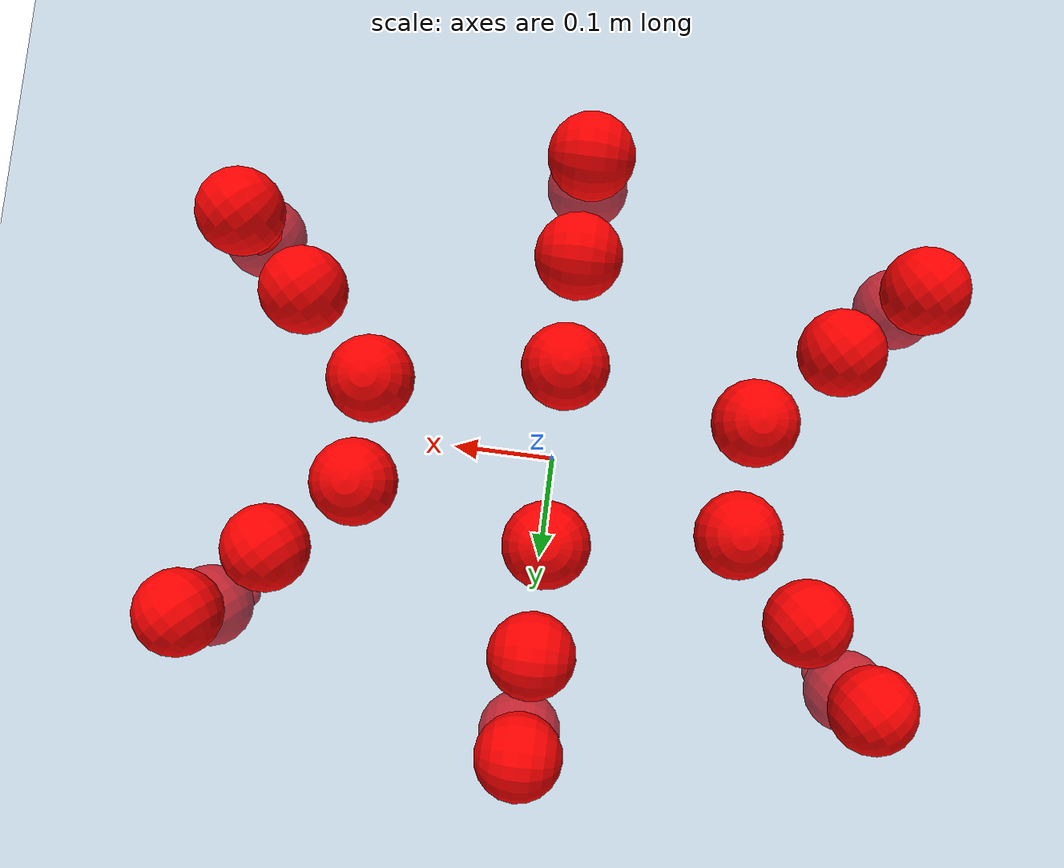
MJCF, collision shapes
<mujoco model="Golem">
  <compiler angle="radian" assetdir="assets" balanceinertia="true" inertiafromgeom="false"/>

  <option timestep="0.005" density="1.2" viscosity="2e-05"/>

  <size nkey="1"/>

  <visual>
    <quality shadowsize="8192"/>
    <map shadowclip="0.5"/>
  </visual>

  <default>
    <default class="/">
      <joint armature="0.01" damping="0.01" frictionloss="0.01"/>
      <geom contype="0" conaffinity="0" group="1" solref="-1000 -80"/>
      <site size="0.01 0.005 0.005" group="5"/>
      <general forcelimited="true" biastype="affine" gainprm="25" biasprm="0 -25 -0.5"/>
      <default class="visual">
        <geom type="mesh" group="2"/>
      </default>
      <default class="collision">
        <geom group="3"/>
      </default>
      <default class="foot">
        <geom size="0.01 0 0" condim="6" group="4" priority="1" solimp="0.015 1 0.01"/>
      </default>
      <default class="reward_collision_sphere">
        <geom group="5" rgba="1 0 0 1"/>
      </default>
    </default>
  </default>

  <asset>
    <texture type="skybox" colorspace="auto" name="//unnamed_texture_0" builtin="gradient" rgb1="0.95 0.95 0.95" rgb2="0.95 0.95 0.95" width="100" height="600"/>
    <texture type="2d" colorspace="auto" name="texplane" builtin="checker" rgb1="0.345 0.575 0.748" rgb2="0.345 0.575 0.748" markrgb="1 1 1" width="512" height="512"/>
    <material name="MatPlane" class="/" texture="texplane" texuniform="true" texrepeat="2 2" specular="0.9"/>
    <mesh name="body" class="/" file="body.stl" scale="0.001 0.001 0.001"/>
    <mesh name="coxa" class="/" file="coxa.stl" scale="0.001 0.001 0.001"/>
    <mesh name="femur" class="/" file="femur.stl" scale="0.001 0.001 0.001"/>
    <mesh name="tibia" class="/" file="tibia.stl" scale="0.001 0.001 0.001"/>
    <mesh name="tarsus" class="/" file="tarsus.stl" scale="0.001 0.001 0.001"/>
  </asset>

  <worldbody>
    <geom name="floor" class="/" size="100 100 0.125" type="plane" group="0" material="MatPlane"/>
    <light name="toplight_shadow" class="/" pos="0 0 5" dir="0.0990148 0.0990148 -0.990148" type="directional" ambient="0.04 0.04 0.04" diffuse="0.55 0.55 0.55" specular="0.12 0.12 0.12"/>
    <light name="toplight_fill" class="/" pos="0 0 5" dir="0.0990148 0.0990148 -0.990148" type="directional" castshadow="false" ambient="0.04 0.04 0.04" diffuse="0.3 0.3 0.3" specular="0.08 0.08 0.08"/>
    <body name="trunk" pos="-0.0024691 -0.00216003 -0.000974951" quat="1 0.000291661 -0.000462214 0.000151632">
      <inertial pos="0.00285115 -0.00127351 -0.00348909" quat="0.999937 0.00949673 -0.000439395 0.00601593" mass="4.67618" diaginertia="0.0236805 0.00696923 0.0167888"/>
      <joint name="//unnamed_joint_0" type="free"/>
      <geom name="//unnamed_geom_1" class="/" pos="0 0 0.0702493" quat="1 0 0 0" type="mesh" rgba="0.9 0.9 0.9 1" mesh="body"/>
      <site name="imu" class="/" pos="0.168038 0.012301 0.107375" size="0.0107028"/>
      <camera name="track" class="/" pos="0 -1.85796 0" quat="0.707107 0.707107 0 0" mode="trackcom"/>
      <camera name="ego_camera" class="/" pos="0.153948 0 0.109765" quat="-0.5 -0.5 0.5 0.5"/>
      <body name="coxa_RR" pos="-0.211756 -0.08 0.0705986" quat="0.382557 -6.75338e-05 7.49623e-05 -0.923932">
        <inertial pos="-0.000144772 -0.000970045 0.000639817" quat="0.999997 -0.00170071 0.000487221 -0.00152797" mass="0.243439" diaginertia="0.0224702 0.00683856 0.0154593"/>
        <joint name="coxa_joint_RR" class="/" pos="0 0 0" axis="-0.000190203 0.000623409 -1" range="-3.1451 3.11879" armature="0.0111796" damping="0.00376955" frictionloss="0.0110796"/>
        <geom name="//unnamed_geom_2" class="/" type="mesh" rgba="0.2 0.2 0.2 1" mesh="coxa"/>
        <geom name="//unnamed_geom_3" class="reward_collision_sphere" size="0.0428113" pos="-0.0355266 0 0"/>
        <body name="femur_RR" pos="0.0729779 0.00231748 -0.00242796" quat="0.500102 -0.499734 0.500457 0.499706">
          <inertial pos="-0.00241343 -0.000172136 -0.00188116" quat="0.999939 0.002231 -0.00090034 -0.0108054" mass="0.236571" diaginertia="0.0223365 0.00667025 0.0155463"/>
          <joint name="femur_joint_RR" class="/" pos="0 0 0" axis="0.00295902 -0.00476604 -0.999984" stiffness="0.00732288" range="-3.13391 3.1432" armature="0.0110761" damping="0.0122591" frictionloss="0.0105465"/>
          <geom name="//unnamed_geom_4" class="/" type="mesh" rgba="0.9 0.9 0.9 1" mesh="femur"/>
          <geom name="//unnamed_geom_5" class="reward_collision_sphere" size="0.0428113"/>
          <body name="tibia_RR" pos="0.00146697 -0.101688 -0.00193776" quat="0.000109972 1 0.00027724 0.000132561">
            <inertial pos="0.000633415 -0.000342096 -0.00283462" quat="0.999943 0.00934647 -0.00190496 0.00470207" mass="0.253377" diaginertia="0.024046 0.0073015 0.0162522"/>
            <joint name="tibia_joint_RR" class="/" pos="0 0 0" axis="0.0149647 -0.00353414 0.999882" range="-3.18389 3.14229" armature="0.00997753" damping="0.00189839" frictionloss="0.00921312"/>
            <geom name="//unnamed_geom_6" class="/" type="mesh" rgba="0.2 0.2 0.2 1" mesh="tibia"/>
            <geom name="//unnamed_geom_7" class="reward_collision_sphere" size="0.0428113"/>
            <body name="tarsus_RR" pos="0.101957 0.00175992 0.000210933" quat="1 -0.000141953 7.12075e-05 -0.000267587">
              <inertial pos="0.0711945 0.000413744 0.000508635" quat="0.505033 0.493069 0.505787 0.495987" mass="0.24299" diaginertia="0.0229196 0.00673309 0.0159817"/>
              <joint name="tarsus_joint_RR" class="/" pos="0 0 0" axis="0.00850831 -0.00203853 0.999962" range="-3.13129 3.09072" armature="0.010222" damping="0.0438743" frictionloss="0.0105547"/>
              <geom name="//unnamed_geom_8" class="/" type="mesh" rgba="0.9 0.9 0.9 1" mesh="tarsus"/>
              <geom name="foot_1" class="foot" size="0.0109479" pos="0.132632 0 0" quat="0 -0.707107 0 0.707107"/>
              <geom name="//unnamed_geom_10" class="reward_collision_sphere" size="0.0428113"/>
              <geom name="//unnamed_geom_11" class="reward_collision_sphere" size="0.0160542" pos="0.127303 0 0"/>
              <site name="foot_1" class="foot" pos="0.132632 0 0" quat="0 -0.707107 0 0.707107" size="0.0107028"/>
            </body>
          </body>
        </body>
      </body>
      <body name="coxa_RM" pos="0.00103769 -0.120593 0.0730794" quat="0.707923 0.000327105 -0.000266801 -0.70629">
        <inertial pos="-0.00273069 0.000634596 -0.00260178" quat="0.999906 -0.00962519 -0.00804458 0.00558411" mass="0.245597" diaginertia="0.0220979 0.00689361 0.0157182"/>
        <joint name="coxa_joint_RM" class="/" pos="0 0 0" axis="-0.00107566 0.00219527 -0.999997" range="-3.12122 3.15787" armature="0.0101582" damping="0.00958796" frictionloss="0.0100955"/>
        <geom name="//unnamed_geom_12" class="/" type="mesh" rgba="0.2 0.2 0.2 1" mesh="coxa"/>
        <geom name="//unnamed_geom_13" class="reward_collision_sphere" size="0.0428113" pos="-0.0355266 0 0"/>
        <body name="femur_RM" pos="0.0719612 0.000913105 -0.00185346" quat="0.4992 -0.499425 0.500942 0.500431">
          <inertial pos="0.00260337 8.36484e-05 1.56329e-05" quat="0.99993 -0.0021183 0.00255847 -0.0113233" mass="0.247826" diaginertia="0.0232146 0.00669303 0.0161875"/>
          <joint name="femur_joint_RM" class="/" pos="0 0 0" axis="0.0135827 -0.00255099 -0.999904" range="-3.13246 3.13846" armature="0.0109759" damping="0.0101037" frictionloss="0.0111626"/>
          <geom name="//unnamed_geom_14" class="/" type="mesh" rgba="0.9 0.9 0.9 1" mesh="femur"/>
          <geom name="//unnamed_geom_15" class="reward_collision_sphere" size="0.0428113"/>
          <body name="tibia_RM" pos="0.00126374 -0.0990688 -1.19831e-05" quat="-6.64722e-05 1 -0.000211991 1.58722e-06">
            <inertial pos="-0.0022334 0.0007077 -0.00217451" quat="0.999986 -0.00375813 0.00376218 -0.000112226" mass="0.249923" diaginertia="0.0239459 0.00664208 0.0153501"/>
            <joint name="tibia_joint_RM" class="/" pos="0 0 0" axis="-0.00977221 0.00421821 0.999943" range="-3.13842 3.12284" armature="0.0108747" damping="0.0110664" frictionloss="0.0103484"/>
            <geom name="//unnamed_geom_16" class="/" type="mesh" rgba="0.2 0.2 0.2 1" mesh="tibia"/>
            <geom name="//unnamed_geom_17" class="reward_collision_sphere" size="0.0428113"/>
            <body name="tarsus_RM" pos="0.107069 0.000374817 -0.000658916" quat="1 -0.000170126 -6.24648e-05 -4.17494e-05">
              <inertial pos="0.0721468 0.000592881 0.000695965" quat="0.49871 0.503606 0.498456 0.499211" mass="0.243275" diaginertia="0.0225186 0.00689917 0.0165053"/>
              <joint name="tarsus_joint_RM" class="/" pos="0 0 0" axis="-0.0112416 -0.00891781 0.999897" range="-3.14948 3.14245" armature="0.0106112" damping="0.00407347" frictionloss="0.0104345"/>
              <geom name="//unnamed_geom_18" class="/" type="mesh" rgba="0.9 0.9 0.9 1" mesh="tarsus"/>
              <geom name="foot_2" class="foot" size="0.00974925" pos="0.132632 0 0" quat="0 -0.707107 0 0.707107"/>
              <geom name="//unnamed_geom_20" class="reward_collision_sphere" size="0.0428113"/>
              <geom name="//unnamed_geom_21" class="reward_collision_sphere" size="0.0160542" pos="0.127303 0 0"/>
              <site name="foot_2" class="foot" pos="0.132632 0 0" quat="0 -0.707107 0 0.707107" size="0.0107028"/>
            </body>
          </body>
        </body>
      </body>
      <body name="coxa_RF" pos="0.210535 -0.0748254 0.0687057" quat="0.923858 -9.65827e-05 -9.42128e-05 -0.382734">
        <inertial pos="-0.0020282 -0.00111302 -0.000361605" quat="0.999901 0.0128146 -0.00487246 0.00314989" mass="0.252652" diaginertia="0.0241753 0.00676095 0.0161499"/>
        <joint name="coxa_joint_RF" class="/" pos="0 0 0" axis="0.00264664 0.00375352 -0.999989" range="-3.16056 3.14218" armature="0.0120455" damping="0.0122375" frictionloss="0.0105863"/>
        <geom name="//unnamed_geom_22" class="/" type="mesh" rgba="0.2 0.2 0.2 1" mesh="coxa"/>
        <geom name="//unnamed_geom_23" class="reward_collision_sphere" size="0.0428113" pos="-0.0355266 0 0"/>
        <body name="femur_RF" pos="0.071498 -0.000277916 0.00212948" quat="0.500031 -0.500048 0.499992 0.499929">
          <inertial pos="0.00200882 0.00231021 0.00188567" quat="0.999995 -0.00189135 0.000297494 0.00260312" mass="0.236741" diaginertia="0.0239236 0.00665652 0.0160796"/>
          <joint name="femur_joint_RF" class="/" pos="0 0 0" axis="-0.0123724 0.000305842 -0.999923" range="-3.16184 3.08714" armature="0.0106973" damping="0.0050044" frictionloss="0.0109678"/>
          <geom name="//unnamed_geom_24" class="/" type="mesh" rgba="0.9 0.9 0.9 1" mesh="femur"/>
          <geom name="//unnamed_geom_25" class="reward_collision_sphere" size="0.0428113"/>
          <body name="tibia_RF" pos="-0.0010082 -0.097912 0.00220897" quat="0.000240513 1 -0.000210351 5.32728e-05">
            <inertial pos="-0.00210056 -0.00249252 0.00245419" quat="0.999947 -0.00636599 0.00685664 -0.00419128" mass="0.253176" diaginertia="0.0231655 0.00686311 0.016014"/>
            <joint name="tibia_joint_RF" class="/" pos="0 0 0" axis="0.00481239 0.00449069 0.999978" range="-3.14276 3.08207" armature="0.0113219" damping="0.0113567" frictionloss="0.0105978"/>
            <geom name="//unnamed_geom_26" class="/" type="mesh" rgba="0.2 0.2 0.2 1" mesh="tibia"/>
            <geom name="//unnamed_geom_27" class="reward_collision_sphere" size="0.0428113"/>
            <body name="tarsus_RF" pos="0.105366 0.0025731 -0.00232482" quat="0.999999 0.000178803 0.000649422 -0.0011441">
              <inertial pos="0.0729615 8.16559e-05 -4.34478e-05" quat="0.502092 0.499358 0.501347 0.497188" mass="0.247317" diaginertia="0.0237173 0.00713133 0.015422"/>
              <joint name="tarsus_joint_RF" class="/" pos="0 0 0" axis="5.1667e-05 -0.000428604 1" range="-3.17668 3.13376" armature="0.0122515" damping="0.00771304" frictionloss="0.0117825"/>
              <geom name="//unnamed_geom_28" class="/" type="mesh" rgba="0.9 0.9 0.9 1" mesh="tarsus"/>
              <geom name="foot_3" class="foot" size="0.0117284" pos="0.132632 0 0" quat="0 -0.707107 0 0.707107"/>
              <geom name="//unnamed_geom_30" class="reward_collision_sphere" size="0.0428113"/>
              <geom name="//unnamed_geom_31" class="reward_collision_sphere" size="0.0160542" pos="0.127303 0 0"/>
              <site name="foot_3" class="foot" pos="0.132632 0 0" quat="0 -0.707107 0 0.707107" size="0.0107028"/>
            </body>
          </body>
        </body>
      </body>
      <body name="coxa_LR" pos="-0.209146 0.0789514 0.0676519" quat="0.381817 -0.000147629 -0.000883006 0.924237">
        <inertial pos="0.00113677 -0.000811797 -0.0019764" quat="0.999903 0.0046293 0.0072353 0.010974" mass="0.231716" diaginertia="0.022872 0.00680482 0.0154302"/>
        <joint name="coxa_joint_LR" class="/" pos="0 0 0" axis="-0.00306046 0.00165491 -0.999994" stiffness="0.0101954" range="-3.13625 3.18219" armature="0.0121825" damping="0.00645754" frictionloss="0.0095364"/>
        <geom name="//unnamed_geom_32" class="/" type="mesh" rgba="0.2 0.2 0.2 1" mesh="coxa"/>
        <geom name="//unnamed_geom_33" class="reward_collision_sphere" size="0.0428113" pos="-0.0355266 0 0"/>
        <body name="femur_LR" pos="0.0714195 0.00108485 -0.00151363" quat="0.500274 -0.499715 0.499756 0.500255">
          <inertial pos="-0.000407104 0.000721978 0.000357102" quat="0.999948 -0.0101655 -0.000875076 -0.00043287" mass="0.23893" diaginertia="0.0224456 0.00691785 0.0154122"/>
          <joint name="femur_joint_LR" class="/" pos="0 0 0" axis="0.000340333 -0.00013416 1" range="-3.1473 3.0835" armature="0.0119677" damping="0" frictionloss="0.0107574"/>
          <geom name="//unnamed_geom_34" class="/" type="mesh" rgba="0.9 0.9 0.9 1" mesh="femur"/>
          <geom name="//unnamed_geom_35" class="reward_collision_sphere" size="0.0428113"/>
          <body name="tibia_LR" pos="-0.00207642 -0.101831 -0.00181886" quat="-0.000990252 0.999999 -0.000969475 0.000380017">
            <inertial pos="0.00242627 0.00252287 0.000487159" quat="0.999901 0.00866447 0.00805458 0.00757668" mass="0.238449" diaginertia="0.0240481 0.00720883 0.0156126"/>
            <joint name="tibia_joint_LR" class="/" pos="0 0 0" axis="0.00202153 9.6025e-05 -0.999998" stiffness="0.00603626" range="-3.14923 3.14044" armature="0.0107896" damping="0.0111027" frictionloss="0.0117763"/>
            <geom name="//unnamed_geom_36" class="/" type="mesh" rgba="0.2 0.2 0.2 1" mesh="tibia"/>
            <geom name="//unnamed_geom_37" class="reward_collision_sphere" size="0.0428113"/>
            <body name="tarsus_LR" pos="0.107194 0.00099727 -0.00134561" quat="1 -0.000147755 0.000457658 0.00032456">
              <inertial pos="0.0699556 -0.00203473 -0.000389335" quat="0.503999 0.502725 0.496062 0.497167" mass="0.242615" diaginertia="0.0230828 0.00680013 0.0155932"/>
              <joint name="tarsus_joint_LR" class="/" pos="0 0 0" axis="0.000197003 7.45776e-05 -1" range="-3.11955 3.15855" armature="0.00941242" damping="0.027005" frictionloss="0.0104988"/>
              <geom name="//unnamed_geom_38" class="/" type="mesh" rgba="0.9 0.9 0.9 1" mesh="tarsus"/>
              <geom name="foot_4" class="foot" size="0.0104792" pos="0.132632 0 0" quat="0.707107 0 -0.707107 0"/>
              <geom name="//unnamed_geom_40" class="reward_collision_sphere" size="0.0428113"/>
              <geom name="//unnamed_geom_41" class="reward_collision_sphere" size="0.0160542" pos="0.127303 0 0"/>
              <site name="foot_4" class="foot" pos="0.132632 0 0" quat="0.707107 0 -0.707107 0" size="0.0107028"/>
            </body>
          </body>
        </body>
      </body>
      <body name="coxa_LM" pos="-0.00295637 0.122345 0.0717398" quat="0.706755 0.000114636 0.000625609 0.707458">
        <inertial pos="0.00302503 -0.00268069 -0.00146275" quat="0.999901 -0.00345346 0.0090996 -0.0101909" mass="0.248495" diaginertia="0.0229726 0.00697896 0.0161938"/>
        <joint name="coxa_joint_LM" class="/" pos="0 0 0" axis="0.000257551 0.00394598 -0.999992" stiffness="0.0079632" range="-3.15021 3.14708" armature="0.011634" damping="0" frictionloss="0.0107641"/>
        <geom name="//unnamed_geom_42" class="/" type="mesh" rgba="0.2 0.2 0.2 1" mesh="coxa"/>
        <geom name="//unnamed_geom_43" class="reward_collision_sphere" size="0.0428113" pos="-0.0355266 0 0"/>
        <body name="femur_LM" pos="0.0707721 -0.000203071 -0.0025575" quat="0.499946 -0.501069 0.499668 0.499315">
          <inertial pos="-0.00277373 -0.000501059 -0.00265773" quat="0.999943 -0.00825644 0.0068429 1.6967e-05" mass="0.261954" diaginertia="0.0243013 0.00705784 0.0164872"/>
          <joint name="femur_joint_LM" class="/" pos="0 0 0" axis="-0.000820006 0.000665366 0.999999" range="-3.09249 3.13328" armature="0.0121149" damping="0" frictionloss="0.0108191"/>
          <geom name="//unnamed_geom_44" class="/" type="mesh" rgba="0.9 0.9 0.9 1" mesh="femur"/>
          <geom name="//unnamed_geom_45" class="reward_collision_sphere" size="0.0428113"/>
          <body name="tibia_LM" pos="0.00272438 -0.0961763 -0.000201023" quat="2.11773e-05 1 -9.9934e-06 2.16476e-05">
            <inertial pos="0.00247275 0.00160984 0.00184723" quat="0.999997 0.000843324 -0.000797147 0.00191194" mass="0.246301" diaginertia="0.0229588 0.00669928 0.0165155"/>
            <joint name="tibia_joint_LM" class="/" pos="0 0 0" axis="0.00732757 0.0051098 -0.99996" range="-3.14449 3.14638" armature="0.0120578" damping="0.000973006" frictionloss="0.00921609"/>
            <geom name="//unnamed_geom_46" class="/" type="mesh" rgba="0.2 0.2 0.2 1" mesh="tibia"/>
            <geom name="//unnamed_geom_47" class="reward_collision_sphere" size="0.0428113"/>
            <body name="tarsus_LM" pos="0.103088 -0.00284789 0.00248147" quat="0.999999 0.00121611 3.61506e-05 -0.000482214">
              <inertial pos="0.0715207 0.000996233 0.00234525" quat="0.498058 0.503866 0.499382 0.498673" mass="0.251771" diaginertia="0.0231907 0.00726221 0.0161794"/>
              <joint name="tarsus_joint_LM" class="/" pos="0 0 0" axis="-0.0102938 0.00758053 -0.999918" stiffness="0.0113116" range="-3.17101 3.11695" armature="0.0108396" damping="0.0150321" frictionloss="0.0105452"/>
              <geom name="//unnamed_geom_48" class="/" type="mesh" rgba="0.9 0.9 0.9 1" mesh="tarsus"/>
              <geom name="foot_5" class="foot" size="0.0108168" pos="0.132632 0 0" quat="0.707107 0 -0.707107 0"/>
              <geom name="//unnamed_geom_50" class="reward_collision_sphere" size="0.0428113"/>
              <geom name="//unnamed_geom_51" class="reward_collision_sphere" size="0.0160542" pos="0.127303 0 0"/>
              <site name="foot_5" class="foot" pos="0.132632 0 0" quat="0.707107 0 -0.707107 0" size="0.0107028"/>
            </body>
          </body>
        </body>
      </body>
      <body name="coxa_LF" pos="0.212938 0.0758944 0.0688984" quat="0.924278 0.000898229 -0.000232602 0.381718">
        <inertial pos="0.000394034 0.00230804 -0.000430054" quat="1 -0.000431527 1.21569e-05 -4.74122e-05" mass="0.242961" diaginertia="0.0232367 0.00735309 0.0164747"/>
        <joint name="coxa_joint_LF" class="/" pos="0 0 0" axis="-0.0159343 0.00111159 -0.999872" range="-3.14417 3.12433" armature="0.0115532" damping="0.0132395" frictionloss="0.010625"/>
        <geom name="//unnamed_geom_52" class="/" type="mesh" rgba="0.2 0.2 0.2 1" mesh="coxa"/>
        <geom name="//unnamed_geom_53" class="reward_collision_sphere" size="0.0428113" pos="-0.0355266 0 0"/>
        <body name="femur_LF" pos="0.0701583 -0.00122689 -0.00305996" quat="0.499439 -0.500249 0.501063 0.499247">
          <inertial pos="0.00261406 0.000736241 0.00195967" quat="0.999905 -0.00484012 0.00608114 -0.0114091" mass="0.242089" diaginertia="0.0225762 0.00706661 0.0160512"/>
          <joint name="femur_joint_LF" class="/" pos="0 0 0" axis="0.0103726 -0.00647006 0.999925" range="-3.15059 3.09205" armature="0.0104755" damping="0" frictionloss="0.0103884"/>
          <geom name="//unnamed_geom_54" class="/" type="mesh" rgba="0.9 0.9 0.9 1" mesh="femur"/>
          <geom name="//unnamed_geom_55" class="reward_collision_sphere" size="0.0428113"/>
          <body name="tibia_LF" pos="-0.000840538 -0.102718 -0.00123331" quat="0.00125369 0.999999 0.000351387 0.000210119">
            <inertial pos="-0.000605606 -0.00251796 -0.00012054" quat="0.999986 -0.00454481 -0.00152862 -0.002311" mass="0.244878" diaginertia="0.022767 0.00692416 0.0159196"/>
            <joint name="tibia_joint_LF" class="/" pos="0 0 0" axis="0.00662558 0.0139073 -0.999881" range="-3.19613 3.12871" armature="0.0120199" damping="0.00311671" frictionloss="0.0121123"/>
            <geom name="//unnamed_geom_56" class="/" type="mesh" rgba="0.2 0.2 0.2 1" mesh="tibia"/>
            <geom name="//unnamed_geom_57" class="reward_collision_sphere" size="0.0428113"/>
            <body name="tarsus_LF" pos="0.105835 0.00274039 -0.00204975" quat="1 0.000693485 0.000457527 -0.000255851">
              <inertial pos="0.0699548 0.000821946 -0.000189284" quat="0.502743 0.497306 0.500419 0.499517" mass="0.244282" diaginertia="0.0229418 0.00686468 0.0152303"/>
              <joint name="tarsus_joint_LF" class="/" pos="0 0 0" axis="-0.0070889 -0.00859285 -0.999938" stiffness="0.0308823" range="-3.13087 3.0826" armature="0.0109079" damping="0.0264083" frictionloss="0.0116131"/>
              <geom name="//unnamed_geom_58" class="/" type="mesh" rgba="0.9 0.9 0.9 1" mesh="tarsus"/>
              <geom name="foot_6" class="foot" size="0.00955269" pos="0.132632 0 0" quat="0.707107 0 -0.707107 0"/>
              <geom name="//unnamed_geom_60" class="reward_collision_sphere" size="0.0428113"/>
              <geom name="//unnamed_geom_61" class="reward_collision_sphere" size="0.0160542" pos="0.127303 0 0"/>
              <site name="foot_6" class="foot" pos="0.132632 0 0" quat="0.707107 0 -0.707107 0" size="0.0107028"/>
            </body>
          </body>
        </body>
      </body>
    </body>
  </worldbody>

  <contact>
    <pair class="/" geom1="floor" geom2="foot_1" name="//unnamed_contact_0"/>
    <pair class="/" geom1="floor" geom2="foot_2" name="//unnamed_contact_1"/>
    <pair class="/" geom1="floor" geom2="foot_3" name="//unnamed_contact_2"/>
    <pair class="/" geom1="floor" geom2="foot_4" name="//unnamed_contact_3"/>
    <pair class="/" geom1="floor" geom2="foot_5" name="//unnamed_contact_4"/>
    <pair class="/" geom1="floor" geom2="foot_6" name="//unnamed_contact_5"/>
  </contact>

  <actuator>
    <general name="coxa_joint_RR" class="/" joint="coxa_joint_RR" forcerange="-7.09539 7.09539" gainprm="25.2771" biasprm="0 -25.2771 -0.519479"/>
    <general name="femur_joint_RR" class="/" joint="femur_joint_RR" forcerange="-8.23502 8.23502" gainprm="25.2771" biasprm="0 -25.2771 -0.519479"/>
    <general name="tibia_joint_RR" class="/" joint="tibia_joint_RR" forcerange="-7.20539 7.20539" gainprm="25.2771" biasprm="0 -25.2771 -0.519479"/>
    <general name="tarsus_joint_RR" class="/" joint="tarsus_joint_RR" forcerange="-8.38583 8.38583" gainprm="25.2771" biasprm="0 -25.2771 -0.519479"/>
    <general name="coxa_joint_RM" class="/" joint="coxa_joint_RM" forcerange="-7.77511 7.77511" gainprm="25.2771" biasprm="0 -25.2771 -0.519479"/>
    <general name="femur_joint_RM" class="/" joint="femur_joint_RM" forcerange="-7.81992 7.81992" gainprm="25.2771" biasprm="0 -25.2771 -0.519479"/>
    <general name="tibia_joint_RM" class="/" joint="tibia_joint_RM" forcerange="-7.02352 7.02352" gainprm="25.2771" biasprm="0 -25.2771 -0.519479"/>
    <general name="tarsus_joint_RM" class="/" joint="tarsus_joint_RM" forcerange="-8.46597 8.46597" gainprm="25.2771" biasprm="0 -25.2771 -0.519479"/>
    <general name="coxa_joint_RF" class="/" joint="coxa_joint_RF" forcerange="-7.57979 7.57979" gainprm="25.2771" biasprm="0 -25.2771 -0.519479"/>
    <general name="femur_joint_RF" class="/" joint="femur_joint_RF" forcerange="-7.74074 7.74074" gainprm="25.2771" biasprm="0 -25.2771 -0.519479"/>
    <general name="tibia_joint_RF" class="/" joint="tibia_joint_RF" forcerange="-8.559 8.559" gainprm="25.2771" biasprm="0 -25.2771 -0.519479"/>
    <general name="tarsus_joint_RF" class="/" joint="tarsus_joint_RF" forcerange="-8.18921 8.18921" gainprm="25.2771" biasprm="0 -25.2771 -0.519479"/>
    <general name="coxa_joint_LR" class="/" joint="coxa_joint_LR" forcerange="-7.85298 7.85298" gainprm="25.2771" biasprm="0 -25.2771 -0.519479"/>
    <general name="femur_joint_LR" class="/" joint="femur_joint_LR" forcerange="-6.98802 6.98802" gainprm="25.2771" biasprm="0 -25.2771 -0.519479"/>
    <general name="tibia_joint_LR" class="/" joint="tibia_joint_LR" forcerange="-7.45735 7.45735" gainprm="25.2771" biasprm="0 -25.2771 -0.519479"/>
    <general name="tarsus_joint_LR" class="/" joint="tarsus_joint_LR" forcerange="-7.07055 7.07055" gainprm="25.2771" biasprm="0 -25.2771 -0.519479"/>
    <general name="coxa_joint_LM" class="/" joint="coxa_joint_LM" forcerange="-7.45584 7.45584" gainprm="25.2771" biasprm="0 -25.2771 -0.519479"/>
    <general name="femur_joint_LM" class="/" joint="femur_joint_LM" forcerange="-7.8908 7.8908" gainprm="25.2771" biasprm="0 -25.2771 -0.519479"/>
    <general name="tibia_joint_LM" class="/" joint="tibia_joint_LM" forcerange="-7.01659 7.01659" gainprm="25.2771" biasprm="0 -25.2771 -0.519479"/>
    <general name="tarsus_joint_LM" class="/" joint="tarsus_joint_LM" forcerange="-8.06097 8.06097" gainprm="25.2771" biasprm="0 -25.2771 -0.519479"/>
    <general name="coxa_joint_LF" class="/" joint="coxa_joint_LF" forcerange="-7.65793 7.65793" gainprm="25.2771" biasprm="0 -25.2771 -0.519479"/>
    <general name="femur_joint_LF" class="/" joint="femur_joint_LF" forcerange="-7.66872 7.66872" gainprm="25.2771" biasprm="0 -25.2771 -0.519479"/>
    <general name="tibia_joint_LF" class="/" joint="tibia_joint_LF" forcerange="-8.56468 8.56468" gainprm="25.2771" biasprm="0 -25.2771 -0.519479"/>
    <general name="tarsus_joint_LF" class="/" joint="tarsus_joint_LF" forcerange="-7.48813 7.48813" gainprm="25.2771" biasprm="0 -25.2771 -0.519479"/>
  </actuator>

  <sensor>
    <gyro site="imu" name="imu_angular_velocity"/>
    <velocimeter site="imu" name="imu_linear_velocity"/>
    <framelinvel objtype="site" objname="foot_1" name="foot_1_global_linear_velocity"/>
    <framelinvel objtype="site" objname="foot_2" name="foot_2_global_linear_velocity"/>
    <framelinvel objtype="site" objname="foot_3" name="foot_3_global_linear_velocity"/>
    <framelinvel objtype="site" objname="foot_4" name="foot_4_global_linear_velocity"/>
    <framelinvel objtype="site" objname="foot_5" name="foot_5_global_linear_velocity"/>
    <framelinvel objtype="site" objname="foot_6" name="foot_6_global_linear_velocity"/>
  </sensor>

  <keyframe>
    <key name="home" qpos="0 0 0.1457 1 0 0 0 0 0 0 0 0 0 0 0 0 0 0 0 0 0 0 0 0 0 0 0 0 0 0 0"/>
  </keyframe>
</mujoco>
